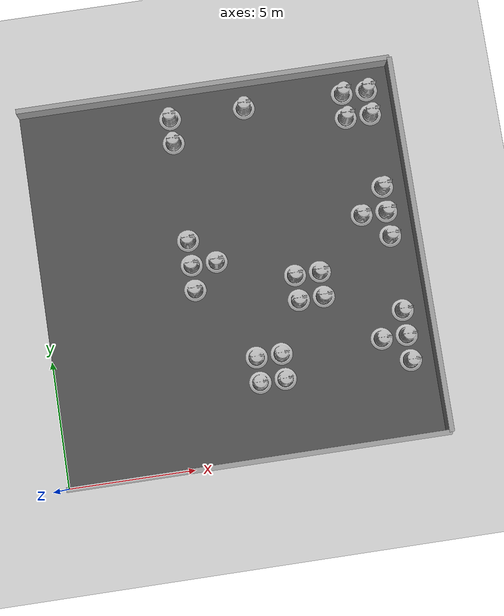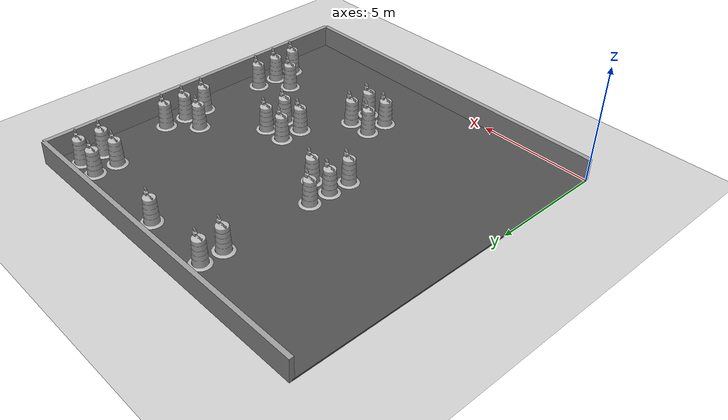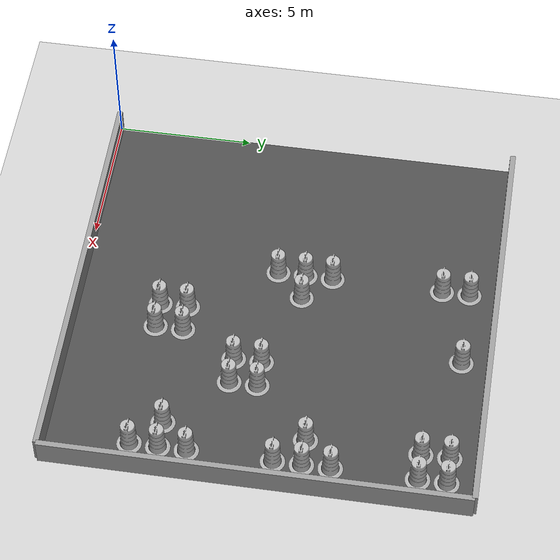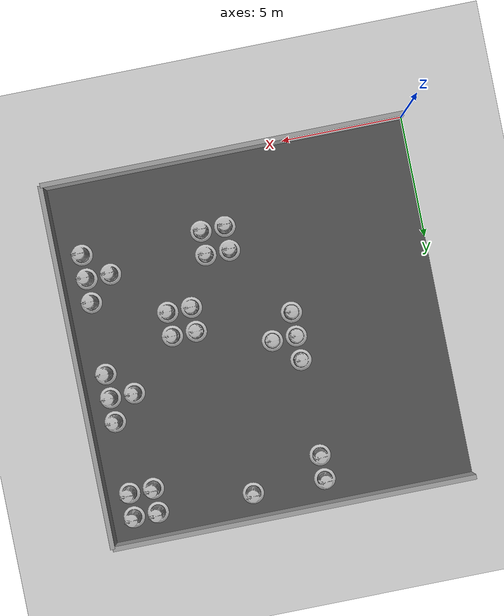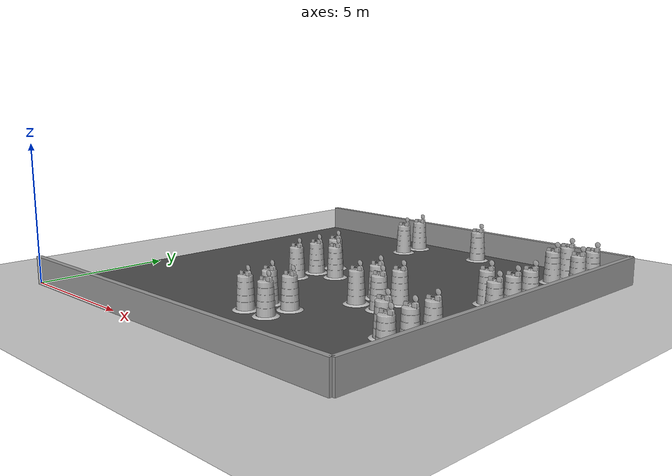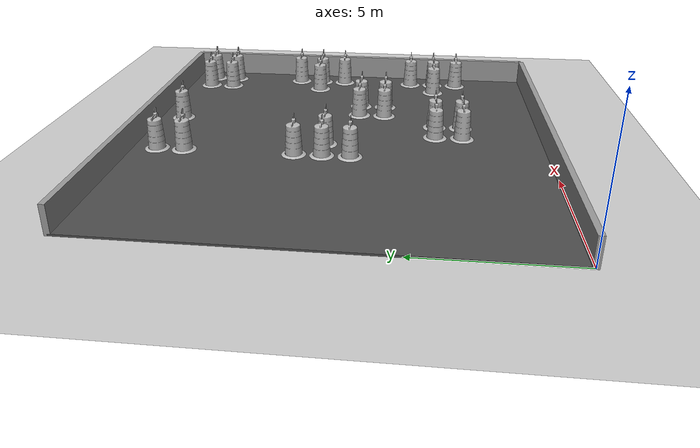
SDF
<sdf version="1.4">
 <world name="default">
  <include><uri>model://ground_plane</uri></include>
  <include><uri>model://sun</uri></include>
  <model name="grey_wall">
   <static>1</static>
   <link name="link">
    <visual name="visual">
     <cast_shadows>0</cast_shadows>
     <geometry><box><size>15 0.2 2</size></box></geometry>
     <material>
      <script>
       <uri>model://grey_wall/materials/scripts</uri>
       <uri>model://grey_wall/materials/textures</uri>
       <name>vrc/grey_wall</name>
      </script>
     </material>
    </visual>
   </link>
   <pose>7.5 0 0 0 0 0</pose>
  </model>
  <model name="grey_wall">
   <static>1</static>
   <link name="link">
    <visual name="visual">
     <cast_shadows>0</cast_shadows>
     <geometry><box><size>15 0.2 2</size></box></geometry>
     <material>
      <script>
       <uri>model://grey_wall/materials/scripts</uri>
       <uri>model://grey_wall/materials/textures</uri>
       <name>vrc/grey_wall</name>
      </script>
     </material>
    </visual>
   </link>
   <pose>15 7.5 0 0 0 -1.57079632679</pose>
  </model>
  <model name="grey_wall">
   <static>1</static>
   <link name="link">
    <visual name="visual">
     <cast_shadows>0</cast_shadows>
     <geometry><box><size>15 0.2 2</size></box></geometry>
     <material>
      <script>
       <uri>model://grey_wall/materials/scripts</uri>
       <uri>model://grey_wall/materials/textures</uri>
       <name>vrc/grey_wall</name>
      </script>
     </material>
    </visual>
   </link>
   <pose>7.5 15 0 0 0 3.14159265359</pose>
  </model>
  <model name="asphalt_plane">
   <static>1</static>
   <link name="link">
    <visual name="visual">
     <cast_shadows>0</cast_shadows>
     <geometry><box><size>15 15 0.1</size></box></geometry>
     <material>
      <script>
       <uri>model://asphalt_plane/materials/scripts</uri>
       <uri>model://asphalt_plane/materials/textures</uri>
       <name>vrc/asphalt</name>
      </script>
     </material>
    </visual>
   </link>
   <pose>7.5 7.5 0 0 0 0</pose>
  </model>
  <model name="Construction Barrel">
   <link name="link">
    <collision name="collision">
     <geometry>
      <mesh><uri>model://construction_barrel/meshes/construction_barrel.dae</uri><scale>1 1 1</scale></mesh>
     </geometry>
    </collision>
    <visual name="visual">
     <geometry><mesh><uri>model://construction_barrel/meshes/construction_barrel.dae</uri></mesh></geometry>
    </visual>
   </link>
   <pose>6 7 0 0 0 0</pose>
   <static>1</static>
  </model>
  <model name="Construction Barrel">
   <link name="link">
    <collision name="collision">
     <geometry>
      <mesh><uri>model://construction_barrel/meshes/construction_barrel.dae</uri><scale>1 1 1</scale></mesh>
     </geometry>
    </collision>
    <visual name="visual">
     <geometry><mesh><uri>model://construction_barrel/meshes/construction_barrel.dae</uri></mesh></geometry>
    </visual>
   </link>
   <pose>6 8 0 0 0 0</pose>
   <static>1</static>
  </model>
  <model name="Construction Barrel">
   <link name="link">
    <collision name="collision">
     <geometry>
      <mesh><uri>model://construction_barrel/meshes/construction_barrel.dae</uri><scale>1 1 1</scale></mesh>
     </geometry>
    </collision>
    <visual name="visual">
     <geometry><mesh><uri>model://construction_barrel/meshes/construction_barrel.dae</uri></mesh></geometry>
    </visual>
   </link>
   <pose>6 9 0 0 0 0</pose>
   <static>1</static>
  </model>
  <model name="Construction Barrel">
   <link name="link">
    <collision name="collision">
     <geometry>
      <mesh><uri>model://construction_barrel/meshes/construction_barrel.dae</uri><scale>1 1 1</scale></mesh>
     </geometry>
    </collision>
    <visual name="visual">
     <geometry><mesh><uri>model://construction_barrel/meshes/construction_barrel.dae</uri></mesh></geometry>
    </visual>
   </link>
   <pose>6 13 0 0 0 0</pose>
   <static>1</static>
  </model>
  <model name="Construction Barrel">
   <link name="link">
    <collision name="collision">
     <geometry>
      <mesh><uri>model://construction_barrel/meshes/construction_barrel.dae</uri><scale>1 1 1</scale></mesh>
     </geometry>
    </collision>
    <visual name="visual">
     <geometry><mesh><uri>model://construction_barrel/meshes/construction_barrel.dae</uri></mesh></geometry>
    </visual>
   </link>
   <pose>6 14 0 0 0 0</pose>
   <static>1</static>
  </model>
  <model name="Construction Barrel">
   <link name="link">
    <collision name="collision">
     <geometry>
      <mesh><uri>model://construction_barrel/meshes/construction_barrel.dae</uri><scale>1 1 1</scale></mesh>
     </geometry>
    </collision>
    <visual name="visual">
     <geometry><mesh><uri>model://construction_barrel/meshes/construction_barrel.dae</uri></mesh></geometry>
    </visual>
   </link>
   <pose>7 8 0 0 0 0</pose>
   <static>1</static>
  </model>
  <model name="Construction Barrel">
   <link name="link">
    <collision name="collision">
     <geometry>
      <mesh><uri>model://construction_barrel/meshes/construction_barrel.dae</uri><scale>1 1 1</scale></mesh>
     </geometry>
    </collision>
    <visual name="visual">
     <geometry><mesh><uri>model://construction_barrel/meshes/construction_barrel.dae</uri></mesh></geometry>
    </visual>
   </link>
   <pose>8 3 0 0 0 0</pose>
   <static>1</static>
  </model>
  <model name="Construction Barrel">
   <link name="link">
    <collision name="collision">
     <geometry>
      <mesh><uri>model://construction_barrel/meshes/construction_barrel.dae</uri><scale>1 1 1</scale></mesh>
     </geometry>
    </collision>
    <visual name="visual">
     <geometry><mesh><uri>model://construction_barrel/meshes/construction_barrel.dae</uri></mesh></geometry>
    </visual>
   </link>
   <pose>8 4 0 0 0 0</pose>
   <static>1</static>
  </model>
  <model name="Construction Barrel">
   <link name="link">
    <collision name="collision">
     <geometry>
      <mesh><uri>model://construction_barrel/meshes/construction_barrel.dae</uri><scale>1 1 1</scale></mesh>
     </geometry>
    </collision>
    <visual name="visual">
     <geometry><mesh><uri>model://construction_barrel/meshes/construction_barrel.dae</uri></mesh></geometry>
    </visual>
   </link>
   <pose>9 3 0 0 0 0</pose>
   <static>1</static>
  </model>
  <model name="Construction Barrel">
   <link name="link">
    <collision name="collision">
     <geometry>
      <mesh><uri>model://construction_barrel/meshes/construction_barrel.dae</uri><scale>1 1 1</scale></mesh>
     </geometry>
    </collision>
    <visual name="visual">
     <geometry><mesh><uri>model://construction_barrel/meshes/construction_barrel.dae</uri></mesh></geometry>
    </visual>
   </link>
   <pose>9 4 0 0 0 0</pose>
   <static>1</static>
  </model>
  <model name="Construction Barrel">
   <link name="link">
    <collision name="collision">
     <geometry>
      <mesh><uri>model://construction_barrel/meshes/construction_barrel.dae</uri><scale>1 1 1</scale></mesh>
     </geometry>
    </collision>
    <visual name="visual">
     <geometry><mesh><uri>model://construction_barrel/meshes/construction_barrel.dae</uri></mesh></geometry>
    </visual>
   </link>
   <pose>9 14 0 0 0 0</pose>
   <static>1</static>
  </model>
  <model name="Construction Barrel">
   <link name="link">
    <collision name="collision">
     <geometry>
      <mesh><uri>model://construction_barrel/meshes/construction_barrel.dae</uri><scale>1 1 1</scale></mesh>
     </geometry>
    </collision>
    <visual name="visual">
     <geometry><mesh><uri>model://construction_barrel/meshes/construction_barrel.dae</uri></mesh></geometry>
    </visual>
   </link>
   <pose>10 6 0 0 0 0</pose>
   <static>1</static>
  </model>
  <model name="Construction Barrel">
   <link name="link">
    <collision name="collision">
     <geometry>
      <mesh><uri>model://construction_barrel/meshes/construction_barrel.dae</uri><scale>1 1 1</scale></mesh>
     </geometry>
    </collision>
    <visual name="visual">
     <geometry><mesh><uri>model://construction_barrel/meshes/construction_barrel.dae</uri></mesh></geometry>
    </visual>
   </link>
   <pose>10 7 0 0 0 0</pose>
   <static>1</static>
  </model>
  <model name="Construction Barrel">
   <link name="link">
    <collision name="collision">
     <geometry>
      <mesh><uri>model://construction_barrel/meshes/construction_barrel.dae</uri><scale>1 1 1</scale></mesh>
     </geometry>
    </collision>
    <visual name="visual">
     <geometry><mesh><uri>model://construction_barrel/meshes/construction_barrel.dae</uri></mesh></geometry>
    </visual>
   </link>
   <pose>11 6 0 0 0 0</pose>
   <static>1</static>
  </model>
  <model name="Construction Barrel">
   <link name="link">
    <collision name="collision">
     <geometry>
      <mesh><uri>model://construction_barrel/meshes/construction_barrel.dae</uri><scale>1 1 1</scale></mesh>
     </geometry>
    </collision>
    <visual name="visual">
     <geometry><mesh><uri>model://construction_barrel/meshes/construction_barrel.dae</uri></mesh></geometry>
    </visual>
   </link>
   <pose>11 7 0 0 0 0</pose>
   <static>1</static>
  </model>
  <model name="Construction Barrel">
   <link name="link">
    <collision name="collision">
     <geometry>
      <mesh><uri>model://construction_barrel/meshes/construction_barrel.dae</uri><scale>1 1 1</scale></mesh>
     </geometry>
    </collision>
    <visual name="visual">
     <geometry><mesh><uri>model://construction_barrel/meshes/construction_barrel.dae</uri></mesh></geometry>
    </visual>
   </link>
   <pose>13 4 0 0 0 0</pose>
   <static>1</static>
  </model>
  <model name="Construction Barrel">
   <link name="link">
    <collision name="collision">
     <geometry>
      <mesh><uri>model://construction_barrel/meshes/construction_barrel.dae</uri><scale>1 1 1</scale></mesh>
     </geometry>
    </collision>
    <visual name="visual">
     <geometry><mesh><uri>model://construction_barrel/meshes/construction_barrel.dae</uri></mesh></geometry>
    </visual>
   </link>
   <pose>13 9 0 0 0 0</pose>
   <static>1</static>
  </model>
  <model name="Construction Barrel">
   <link name="link">
    <collision name="collision">
     <geometry>
      <mesh><uri>model://construction_barrel/meshes/construction_barrel.dae</uri><scale>1 1 1</scale></mesh>
     </geometry>
    </collision>
    <visual name="visual">
     <geometry><mesh><uri>model://construction_barrel/meshes/construction_barrel.dae</uri></mesh></geometry>
    </visual>
   </link>
   <pose>13 13 0 0 0 0</pose>
   <static>1</static>
  </model>
  <model name="Construction Barrel">
   <link name="link">
    <collision name="collision">
     <geometry>
      <mesh><uri>model://construction_barrel/meshes/construction_barrel.dae</uri><scale>1 1 1</scale></mesh>
     </geometry>
    </collision>
    <visual name="visual">
     <geometry><mesh><uri>model://construction_barrel/meshes/construction_barrel.dae</uri></mesh></geometry>
    </visual>
   </link>
   <pose>13 14 0 0 0 0</pose>
   <static>1</static>
  </model>
  <model name="Construction Barrel">
   <link name="link">
    <collision name="collision">
     <geometry>
      <mesh><uri>model://construction_barrel/meshes/construction_barrel.dae</uri><scale>1 1 1</scale></mesh>
     </geometry>
    </collision>
    <visual name="visual">
     <geometry><mesh><uri>model://construction_barrel/meshes/construction_barrel.dae</uri></mesh></geometry>
    </visual>
   </link>
   <pose>14 3 0 0 0 0</pose>
   <static>1</static>
  </model>
  <model name="Construction Barrel">
   <link name="link">
    <collision name="collision">
     <geometry>
      <mesh><uri>model://construction_barrel/meshes/construction_barrel.dae</uri><scale>1 1 1</scale></mesh>
     </geometry>
    </collision>
    <visual name="visual">
     <geometry><mesh><uri>model://construction_barrel/meshes/construction_barrel.dae</uri></mesh></geometry>
    </visual>
   </link>
   <pose>14 4 0 0 0 0</pose>
   <static>1</static>
  </model>
  <model name="Construction Barrel">
   <link name="link">
    <collision name="collision">
     <geometry>
      <mesh><uri>model://construction_barrel/meshes/construction_barrel.dae</uri><scale>1 1 1</scale></mesh>
     </geometry>
    </collision>
    <visual name="visual">
     <geometry><mesh><uri>model://construction_barrel/meshes/construction_barrel.dae</uri></mesh></geometry>
    </visual>
   </link>
   <pose>14 5 0 0 0 0</pose>
   <static>1</static>
  </model>
  <model name="Construction Barrel">
   <link name="link">
    <collision name="collision">
     <geometry>
      <mesh><uri>model://construction_barrel/meshes/construction_barrel.dae</uri><scale>1 1 1</scale></mesh>
     </geometry>
    </collision>
    <visual name="visual">
     <geometry><mesh><uri>model://construction_barrel/meshes/construction_barrel.dae</uri></mesh></geometry>
    </visual>
   </link>
   <pose>14 8 0 0 0 0</pose>
   <static>1</static>
  </model>
  <model name="Construction Barrel">
   <link name="link">
    <collision name="collision">
     <geometry>
      <mesh><uri>model://construction_barrel/meshes/construction_barrel.dae</uri><scale>1 1 1</scale></mesh>
     </geometry>
    </collision>
    <visual name="visual">
     <geometry><mesh><uri>model://construction_barrel/meshes/construction_barrel.dae</uri></mesh></geometry>
    </visual>
   </link>
   <pose>14 9 0 0 0 0</pose>
   <static>1</static>
  </model>
  <model name="Construction Barrel">
   <link name="link">
    <collision name="collision">
     <geometry>
      <mesh><uri>model://construction_barrel/meshes/construction_barrel.dae</uri><scale>1 1 1</scale></mesh>
     </geometry>
    </collision>
    <visual name="visual">
     <geometry><mesh><uri>model://construction_barrel/meshes/construction_barrel.dae</uri></mesh></geometry>
    </visual>
   </link>
   <pose>14 10 0 0 0 0</pose>
   <static>1</static>
  </model>
  <model name="Construction Barrel">
   <link name="link">
    <collision name="collision">
     <geometry>
      <mesh><uri>model://construction_barrel/meshes/construction_barrel.dae</uri><scale>1 1 1</scale></mesh>
     </geometry>
    </collision>
    <visual name="visual">
     <geometry><mesh><uri>model://construction_barrel/meshes/construction_barrel.dae</uri></mesh></geometry>
    </visual>
   </link>
   <pose>14 13 0 0 0 0</pose>
   <static>1</static>
  </model>
  <model name="Construction Barrel">
   <link name="link">
    <collision name="collision">
     <geometry>
      <mesh><uri>model://construction_barrel/meshes/construction_barrel.dae</uri><scale>1 1 1</scale></mesh>
     </geometry>
    </collision>
    <visual name="visual">
     <geometry><mesh><uri>model://construction_barrel/meshes/construction_barrel.dae</uri></mesh></geometry>
    </visual>
   </link>
   <pose>14 14 0 0 0 0</pose>
   <static>1</static>
  </model>
 </world>
</sdf>
